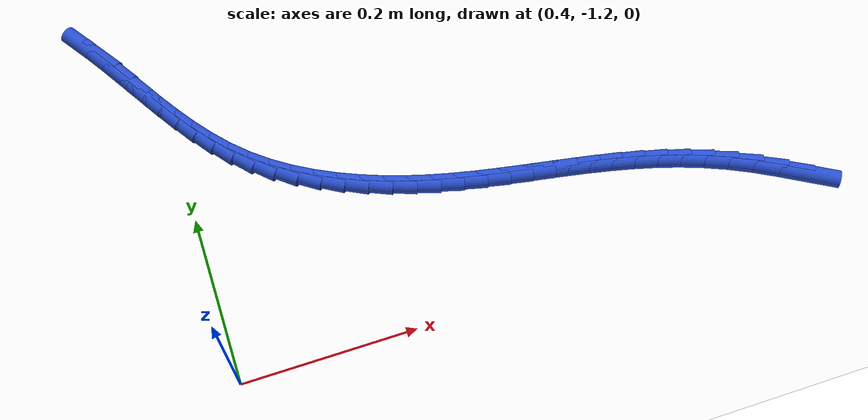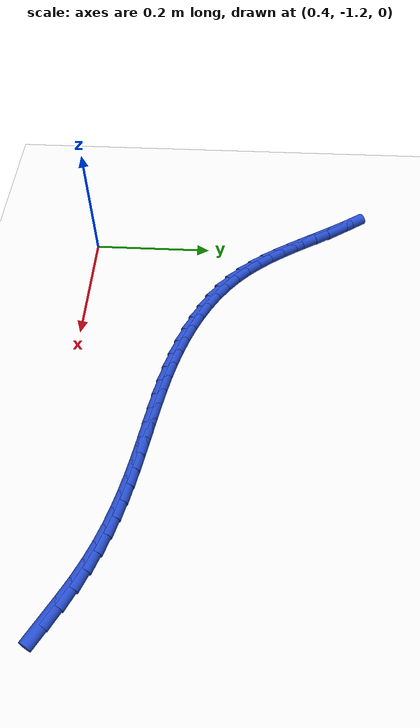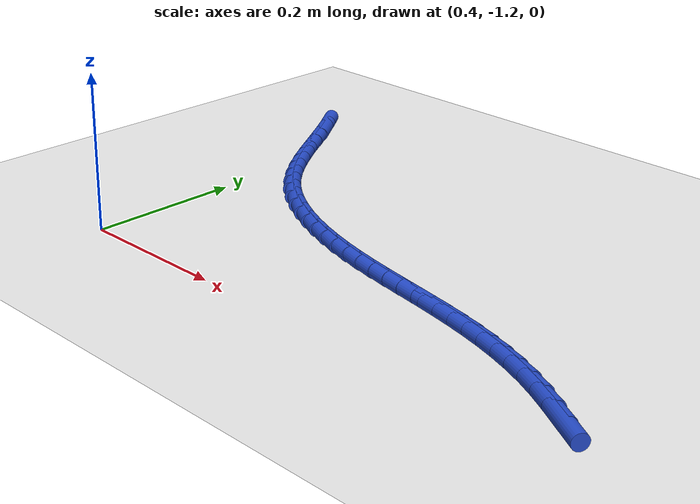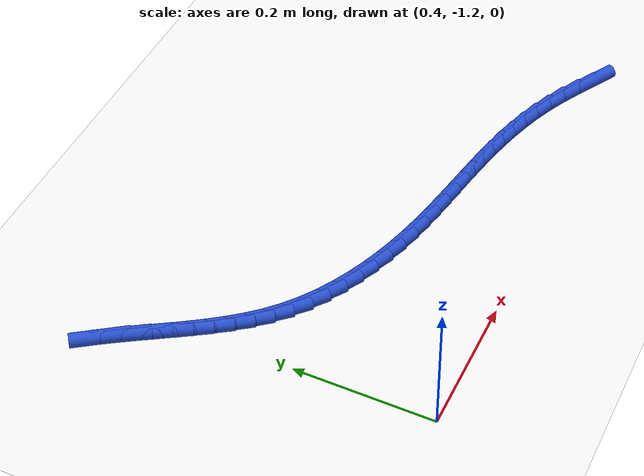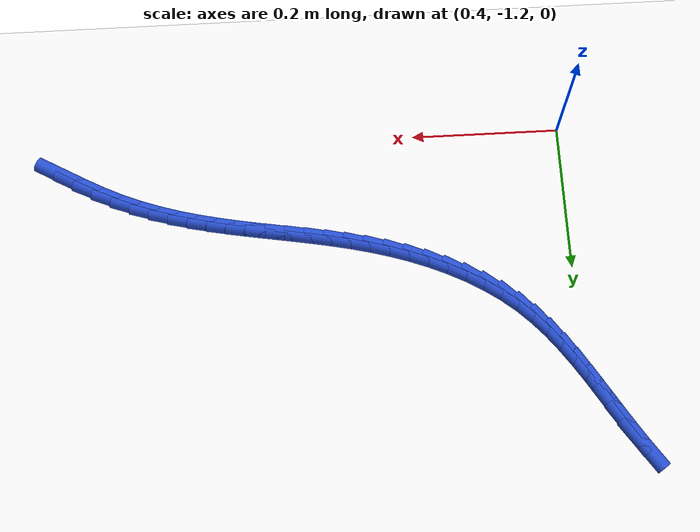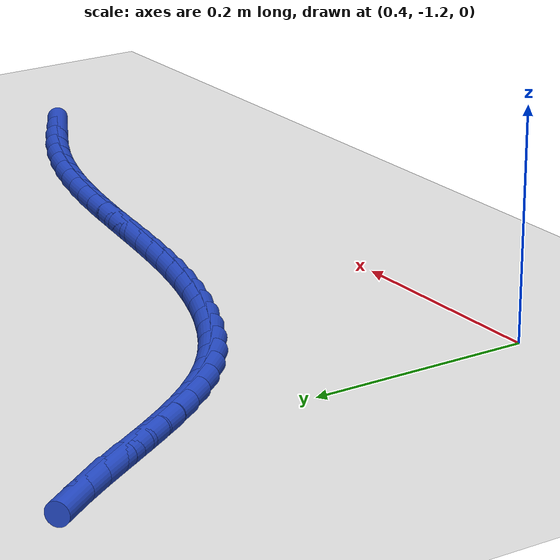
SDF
<sdf version="1.6">
 <world name="default">
  <model name="ground_plane">
   <static>1</static>
   <link name="link">
    <collision name="collision">
     <geometry><plane><normal>0 0 1</normal><size>100 100</size></plane></geometry>
     <surface><friction><ode><mu>100</mu><mu2>50</mu2></ode></friction></surface>
    </collision>
    <visual name="visual">
     <cast_shadows>0</cast_shadows>
     <geometry><plane><normal>0 0 1</normal><size>100 100</size></plane></geometry>
     <material>
      <script><uri>file://media/materials/scripts/gazebo.material</uri><name>Gazebo/WhiteGlow</name></script>
     </material>
    </visual>
   </link>
  </model>
  <model name="line">
   <link name="link_205">
    <pose>1.07564929139321 -1.164375247818625 0.01 0 1.57 -0.5217048323363694</pose>
    <collision name="collision">
     <geometry><cylinder><radius>0.01</radius><length>0.08</length></cylinder></geometry>
    </collision>
    <visual name="visual">
     <material>
      <script><name>Gazebo/Blue</name><uri>file://media/materials/scripts/gazebo.material</uri></script>
     </material>
     <geometry><cylinder><radius>0.01</radius><length>0.08</length></cylinder></geometry>
    </visual>
   </link>
   <link name="link_206">
    <pose>1.0498956600577352 -1.14957134543188 0.01 0 1.57 -0.49828989404912116</pose>
    <collision name="collision">
     <geometry><cylinder><radius>0.01</radius><length>0.08</length></cylinder></geometry>
    </collision>
    <visual name="visual">
     <material>
      <script><name>Gazebo/Blue</name><uri>file://media/materials/scripts/gazebo.material</uri></script>
     </material>
     <geometry><cylinder><radius>0.01</radius><length>0.08</length></cylinder></geometry>
    </visual>
   </link>
   <link name="link_207">
    <pose>1.0240124100166172 -1.1354886811648723 0.01 0 1.57 -0.44929597860686554</pose>
    <collision name="collision">
     <geometry><cylinder><radius>0.01</radius><length>0.08</length></cylinder></geometry>
    </collision>
    <visual name="visual">
     <material>
      <script><name>Gazebo/Blue</name><uri>file://media/materials/scripts/gazebo.material</uri></script>
     </material>
     <geometry><cylinder><radius>0.01</radius><length>0.08</length></cylinder></geometry>
    </visual>
   </link>
   <link name="link_208">
    <pose>0.9981402237681432 -1.1230134477064082 0.01 0 1.57 -0.39405713842776124</pose>
    <collision name="collision">
     <geometry><cylinder><radius>0.01</radius><length>0.08</length></cylinder></geometry>
    </collision>
    <visual name="visual">
     <material>
      <script><name>Gazebo/Blue</name><uri>file://media/materials/scripts/gazebo.material</uri></script>
     </material>
     <geometry><cylinder><radius>0.01</radius><length>0.08</length></cylinder></geometry>
    </visual>
   </link>
   <link name="link_209">
    <pose>0.9723197362718564 -1.1122771464428953 0.01 0 1.57 -0.3430829455787716</pose>
    <collision name="collision">
     <geometry><cylinder><radius>0.01</radius><length>0.08</length></cylinder></geometry>
    </collision>
    <visual name="visual">
     <material>
      <script><name>Gazebo/Blue</name><uri>file://media/materials/scripts/gazebo.material</uri></script>
     </material>
     <geometry><cylinder><radius>0.01</radius><length>0.08</length></cylinder></geometry>
    </visual>
   </link>
   <link name="link_210">
    <pose>0.9465464300906414 -1.1030706794669403 0.01 0 1.57 -0.29744060045425585</pose>
    <collision name="collision">
     <geometry><cylinder><radius>0.01</radius><length>0.08</length></cylinder></geometry>
    </collision>
    <visual name="visual">
     <material>
      <script><name>Gazebo/Blue</name><uri>file://media/materials/scripts/gazebo.material</uri></script>
     </material>
     <geometry><cylinder><radius>0.01</radius><length>0.08</length></cylinder></geometry>
    </visual>
   </link>
   <link name="link_211">
    <pose>0.9208155680585394 -1.0951832913846384 0.01 0 1.57 -0.2579681780243931</pose>
    <collision name="collision">
     <geometry><cylinder><radius>0.01</radius><length>0.08</length></cylinder></geometry>
    </collision>
    <visual name="visual">
     <material>
      <script><name>Gazebo/Blue</name><uri>file://media/materials/scripts/gazebo.material</uri></script>
     </material>
     <geometry><cylinder><radius>0.01</radius><length>0.08</length></cylinder></geometry>
    </visual>
   </link>
   <link name="link_212">
    <pose>0.8951224130095932 -1.0884042268020861 0.01 0 1.57 -0.22531518857478738</pose>
    <collision name="collision">
     <geometry><cylinder><radius>0.01</radius><length>0.08</length></cylinder></geometry>
    </collision>
    <visual name="visual">
     <material>
      <script><name>Gazebo/Blue</name><uri>file://media/materials/scripts/gazebo.material</uri></script>
     </material>
     <geometry><cylinder><radius>0.01</radius><length>0.08</length></cylinder></geometry>
    </visual>
   </link>
   <link name="link_213">
    <pose>0.8694622277778433 -1.0825227303253795 0.01 0 1.57 -0.19995614560884745</pose>
    <collision name="collision">
     <geometry><cylinder><radius>0.01</radius><length>0.08</length></cylinder></geometry>
    </collision>
    <visual name="visual">
     <material>
      <script><name>Gazebo/Blue</name><uri>file://media/materials/scripts/gazebo.material</uri></script>
     </material>
     <geometry><cylinder><radius>0.01</radius><length>0.08</length></cylinder></geometry>
    </visual>
   </link>
   <link name="link_214">
    <pose>0.8438302751973337 -1.077328046560614 0.01 0 1.57 -0.18221661860202834</pose>
    <collision name="collision">
     <geometry><cylinder><radius>0.01</radius><length>0.08</length></cylinder></geometry>
    </collision>
    <visual name="visual">
     <material>
      <script><name>Gazebo/Blue</name><uri>file://media/materials/scripts/gazebo.material</uri></script>
     </material>
     <geometry><cylinder><radius>0.01</radius><length>0.08</length></cylinder></geometry>
    </visual>
   </link>
   <link name="link_215">
    <pose>0.8182218181021051 -1.072609420113886 0.01 0 1.57 -0.17230241009150815</pose>
    <collision name="collision">
     <geometry><cylinder><radius>0.01</radius><length>0.08</length></cylinder></geometry>
    </collision>
    <visual name="visual">
     <material>
      <script><name>Gazebo/Blue</name><uri>file://media/materials/scripts/gazebo.material</uri></script>
     </material>
     <geometry><cylinder><radius>0.01</radius><length>0.08</length></cylinder></geometry>
    </visual>
   </link>
   <link name="link_216">
    <pose>0.7926321193261988 -1.0681560955912914 0.01 0 1.57 -0.17032427652002846</pose>
    <collision name="collision">
     <geometry><cylinder><radius>0.01</radius><length>0.08</length></cylinder></geometry>
    </collision>
    <visual name="visual">
     <material>
      <script><name>Gazebo/Blue</name><uri>file://media/materials/scripts/gazebo.material</uri></script>
     </material>
     <geometry><cylinder><radius>0.01</radius><length>0.08</length></cylinder></geometry>
    </visual>
   </link>
   <link name="link_217">
    <pose>0.7670564417036583 -1.0637573175989257 0.01 0 1.57 -0.17631307655181136</pose>
    <collision name="collision">
     <geometry><cylinder><radius>0.01</radius><length>0.08</length></cylinder></geometry>
    </collision>
    <visual name="visual">
     <material>
      <script><name>Gazebo/Blue</name><uri>file://media/materials/scripts/gazebo.material</uri></script>
     </material>
     <geometry><cylinder><radius>0.01</radius><length>0.08</length></cylinder></geometry>
    </visual>
   </link>
   <link name="link_218">
    <pose>0.7414900480685241 -1.0592023307428853 0.01 0 1.57 -0.1902226041089185</pose>
    <collision name="collision">
     <geometry><cylinder><radius>0.01</radius><length>0.08</length></cylinder></geometry>
    </collision>
    <visual name="visual">
     <material>
      <script><name>Gazebo/Blue</name><uri>file://media/materials/scripts/gazebo.material</uri></script>
     </material>
     <geometry><cylinder><radius>0.01</radius><length>0.08</length></cylinder></geometry>
    </visual>
   </link>
   <link name="link_219">
    <pose>0.7159282012548395 -1.054280379629266 0.01 0 1.57 -0.2119194710141649</pose>
    <collision name="collision">
     <geometry><cylinder><radius>0.01</radius><length>0.08</length></cylinder></geometry>
    </collision>
    <visual name="visual">
     <material>
      <script><name>Gazebo/Blue</name><uri>file://media/materials/scripts/gazebo.material</uri></script>
     </material>
     <geometry><cylinder><radius>0.01</radius><length>0.08</length></cylinder></geometry>
    </visual>
   </link>
   <link name="link_220">
    <pose>0.6903661640966449 -1.0487807088641636 0.01 0 1.57 -0.24116146834321486</pose>
    <collision name="collision">
     <geometry><cylinder><radius>0.01</radius><length>0.08</length></cylinder></geometry>
    </collision>
    <visual name="visual">
     <material>
      <script><name>Gazebo/Blue</name><uri>file://media/materials/scripts/gazebo.material</uri></script>
     </material>
     <geometry><cylinder><radius>0.01</radius><length>0.08</length></cylinder></geometry>
    </visual>
   </link>
   <link name="link_221">
    <pose>0.6647991994279839 -1.0424925630536743 0.01 0 1.57 -0.27753327462399263</pose>
    <collision name="collision">
     <geometry><cylinder><radius>0.01</radius><length>0.08</length></cylinder></geometry>
    </collision>
    <visual name="visual">
     <material>
      <script><name>Gazebo/Blue</name><uri>file://media/materials/scripts/gazebo.material</uri></script>
     </material>
     <geometry><cylinder><radius>0.01</radius><length>0.08</length></cylinder></geometry>
    </visual>
   </link>
   <link name="link_222">
    <pose>0.6392251856657412 -1.0352068968278363 0.01 0 1.57 -0.31940937701540767</pose>
    <collision name="collision">
     <geometry><cylinder><radius>0.01</radius><length>0.08</length></cylinder></geometry>
    </collision>
    <visual name="visual">
     <material>
      <script><name>Gazebo/Blue</name><uri>file://media/materials/scripts/gazebo.material</uri></script>
     </material>
     <geometry><cylinder><radius>0.01</radius><length>0.08</length></cylinder></geometry>
    </visual>
   </link>
   <link name="link_223">
    <pose>0.6137379675705306 -1.026777405993412 0.01 0 1.57 -0.36556889984557117</pose>
    <collision name="collision">
     <geometry><cylinder><radius>0.01</radius><length>0.08</length></cylinder></geometry>
    </collision>
    <visual name="visual">
     <material>
      <script><name>Gazebo/Blue</name><uri>file://media/materials/scripts/gazebo.material</uri></script>
     </material>
     <geometry><cylinder><radius>0.01</radius><length>0.08</length></cylinder></geometry>
    </visual>
   </link>
   <link name="link_224">
    <pose>0.5885528448923407 -1.0171371915804586 0.01 0 1.57 -0.41662383183521606</pose>
    <collision name="collision">
     <geometry><cylinder><radius>0.01</radius><length>0.08</length></cylinder></geometry>
    </collision>
    <visual name="visual">
     <material>
      <script><name>Gazebo/Blue</name><uri>file://media/materials/scripts/gazebo.material</uri></script>
     </material>
     <geometry><cylinder><radius>0.01</radius><length>0.08</length></cylinder></geometry>
    </visual>
   </link>
   <link name="link_225">
    <pose>0.5638929195187576 -1.006224455524984 0.01 0 1.57 -0.4733440315005037</pose>
    <collision name="collision">
     <geometry><cylinder><radius>0.01</radius><length>0.08</length></cylinder></geometry>
    </collision>
    <visual name="visual">
     <material>
      <script><name>Gazebo/Blue</name><uri>file://media/materials/scripts/gazebo.material</uri></script>
     </material>
     <geometry><cylinder><radius>0.01</radius><length>0.08</length></cylinder></geometry>
    </visual>
   </link>
   <link name="link_226">
    <pose>0.5399812933373651 -0.9939773997629936 0.01 0 1.57 -0.5365333466572012</pose>
    <collision name="collision">
     <geometry><cylinder><radius>0.01</radius><length>0.08</length></cylinder></geometry>
    </collision>
    <visual name="visual">
     <material>
      <script><name>Gazebo/Blue</name><uri>file://media/materials/scripts/gazebo.material</uri></script>
     </material>
     <geometry><cylinder><radius>0.01</radius><length>0.08</length></cylinder></geometry>
    </visual>
   </link>
   <link name="link_227">
    <pose>0.5170410682357468 -0.9803342262304945 0.01 0 1.57 -0.6069843580890323</pose>
    <collision name="collision">
     <geometry><cylinder><radius>0.01</radius><length>0.08</length></cylinder></geometry>
    </collision>
    <visual name="visual">
     <material>
      <script><name>Gazebo/Blue</name><uri>file://media/materials/scripts/gazebo.material</uri></script>
     </material>
     <geometry><cylinder><radius>0.01</radius><length>0.08</length></cylinder></geometry>
    </visual>
   </link>
   <link name="link_228">
    <pose>0.49529534610148906 -0.9652331368634944 0.01 0 1.57 -0.6853966578856543</pose>
    <collision name="collision">
     <geometry><cylinder><radius>0.01</radius><length>0.08</length></cylinder></geometry>
    </collision>
    <visual name="visual">
     <material>
      <script><name>Gazebo/Blue</name><uri>file://media/materials/scripts/gazebo.material</uri></script>
     </material>
     <geometry><cylinder><radius>0.01</radius><length>0.08</length></cylinder></geometry>
    </visual>
   </link>
   <link name="link_229">
    <pose>0.47496722882217524 -0.9486123335979995 0.01 0 1.57 -0.770320713125185</pose>
    <collision name="collision">
     <geometry><cylinder><radius>0.01</radius><length>0.08</length></cylinder></geometry>
    </collision>
    <visual name="visual">
     <material>
      <script><name>Gazebo/Blue</name><uri>file://media/materials/scripts/gazebo.material</uri></script>
     </material>
     <geometry><cylinder><radius>0.01</radius><length>0.08</length></cylinder></geometry>
    </visual>
   </link>
   <link name="link_230">
    <pose>0.4562355947789104 -0.9304372016540388 0.01 0 1.57 -0.8478513171399507</pose>
    <collision name="collision">
     <geometry><cylinder><radius>0.01</radius><length>0.08</length></cylinder></geometry>
    </collision>
    <visual name="visual">
     <material>
      <script><name>Gazebo/Blue</name><uri>file://media/materials/scripts/gazebo.material</uri></script>
     </material>
     <geometry><cylinder><radius>0.01</radius><length>0.08</length></cylinder></geometry>
    </visual>
   </link>
   <link name="link_231">
    <pose>0.4389671897615266 -0.9108649877650379 0.01 0 1.57 -0.9112622205875028</pose>
    <collision name="collision">
     <geometry><cylinder><radius>0.01</radius><length>0.08</length></cylinder></geometry>
    </collision>
    <visual name="visual">
     <material>
      <script><name>Gazebo/Blue</name><uri>file://media/materials/scripts/gazebo.material</uri></script>
     </material>
     <geometry><cylinder><radius>0.01</radius><length>0.08</length></cylinder></geometry>
    </visual>
   </link>
   <link name="link_232">
    <pose>0.42289441528826693 -0.8901355173376682 0.01 0 1.57 -0.9602979750905322</pose>
    <collision name="collision">
     <geometry><cylinder><radius>0.01</radius><length>0.08</length></cylinder></geometry>
    </collision>
    <visual name="visual">
     <material>
      <script><name>Gazebo/Blue</name><uri>file://media/materials/scripts/gazebo.material</uri></script>
     </material>
     <geometry><cylinder><radius>0.01</radius><length>0.08</length></cylinder></geometry>
    </visual>
   </link>
   <link name="link_233">
    <pose>0.40774914950557767 -0.8684889374845263 0.01 0 1.57 -0.9951906067524109</pose>
    <collision name="collision">
     <geometry><cylinder><radius>0.01</radius><length>0.08</length></cylinder></geometry>
    </collision>
    <visual name="visual">
     <material>
      <script><name>Gazebo/Blue</name><uri>file://media/materials/scripts/gazebo.material</uri></script>
     </material>
     <geometry><cylinder><radius>0.01</radius><length>0.08</length></cylinder></geometry>
    </visual>
   </link>
   <link name="link_234">
    <pose>0.3932632705599069 -0.8461653953182103 0.01 0 1.57 -1.0163341908101935</pose>
    <collision name="collision">
     <geometry><cylinder><radius>0.01</radius><length>0.08</length></cylinder></geometry>
    </collision>
    <visual name="visual">
     <material>
      <script><name>Gazebo/Blue</name><uri>file://media/materials/scripts/gazebo.material</uri></script>
     </material>
     <geometry><cylinder><radius>0.01</radius><length>0.08</length></cylinder></geometry>
    </visual>
   </link>
   <link name="link_235">
    <pose>0.3791686565977018 -0.8234050379513178 0.01 0 1.57 -1.0240828401176114</pose>
    <collision name="collision">
     <geometry><cylinder><radius>0.01</radius><length>0.08</length></cylinder></geometry>
    </collision>
    <visual name="visual">
     <material>
      <script><name>Gazebo/Blue</name><uri>file://media/materials/scripts/gazebo.material</uri></script>
     </material>
     <geometry><cylinder><radius>0.01</radius><length>0.08</length></cylinder></geometry>
    </visual>
   </link>
   <link name="link_236">
    <pose>0.365197185765409 -0.8004480124964456 0.01 0 1.57 -1.0186411765043104</pose>
    <collision name="collision">
     <geometry><cylinder><radius>0.01</radius><length>0.08</length></cylinder></geometry>
    </collision>
    <visual name="visual">
     <material>
      <script><name>Gazebo/Blue</name><uri>file://media/materials/scripts/gazebo.material</uri></script>
     </material>
     <geometry><cylinder><radius>0.01</radius><length>0.08</length></cylinder></geometry>
    </visual>
   </link>
   <link name="link_237">
    <pose>0.3510807362094768 -0.7775344660661923 0.01 0 1.57 -1.0000298688673994</pose>
    <collision name="collision">
     <geometry><cylinder><radius>0.01</radius><length>0.08</length></cylinder></geometry>
    </collision>
    <visual name="visual">
     <material>
      <script><name>Gazebo/Blue</name><uri>file://media/materials/scripts/gazebo.material</uri></script>
     </material>
     <geometry><cylinder><radius>0.01</radius><length>0.08</length></cylinder></geometry>
    </visual>
   </link>
   <link name="link_238">
    <pose>0.33655118607635154 -0.7549045457731545 0.01 0 1.57 -0.9700694587240496</pose>
    <collision name="collision">
     <geometry><cylinder><radius>0.01</radius><length>0.08</length></cylinder></geometry>
    </collision>
    <visual name="visual">
     <material>
      <script><name>Gazebo/Blue</name><uri>file://media/materials/scripts/gazebo.material</uri></script>
     </material>
     <geometry><cylinder><radius>0.01</radius><length>0.08</length></cylinder></geometry>
    </visual>
   </link>
  </model>
 </world>
</sdf>
